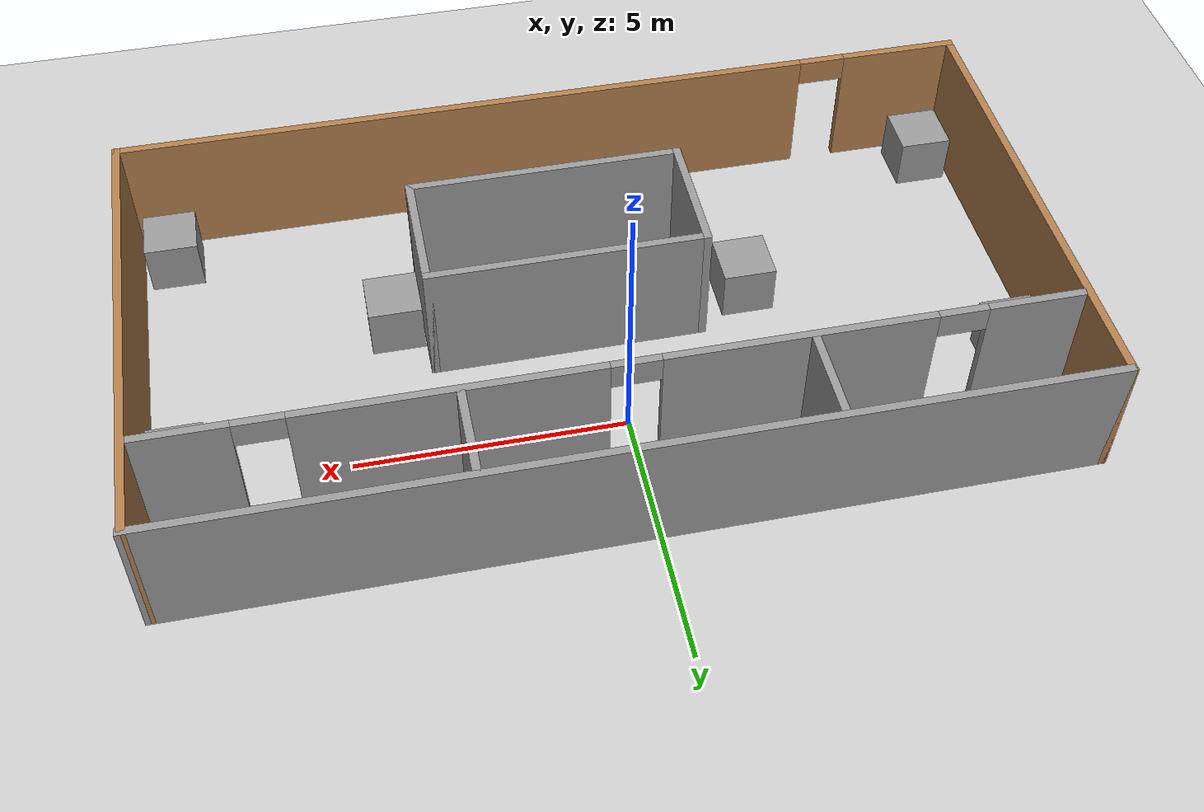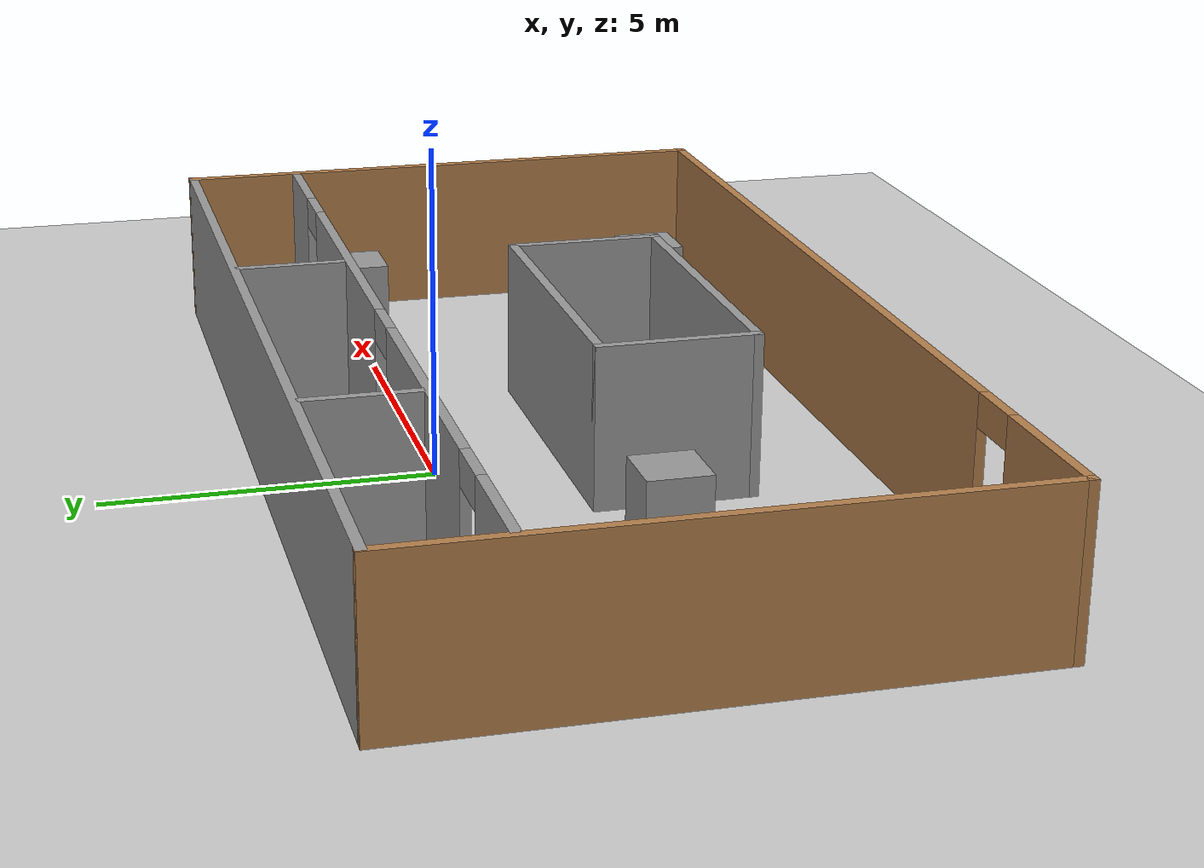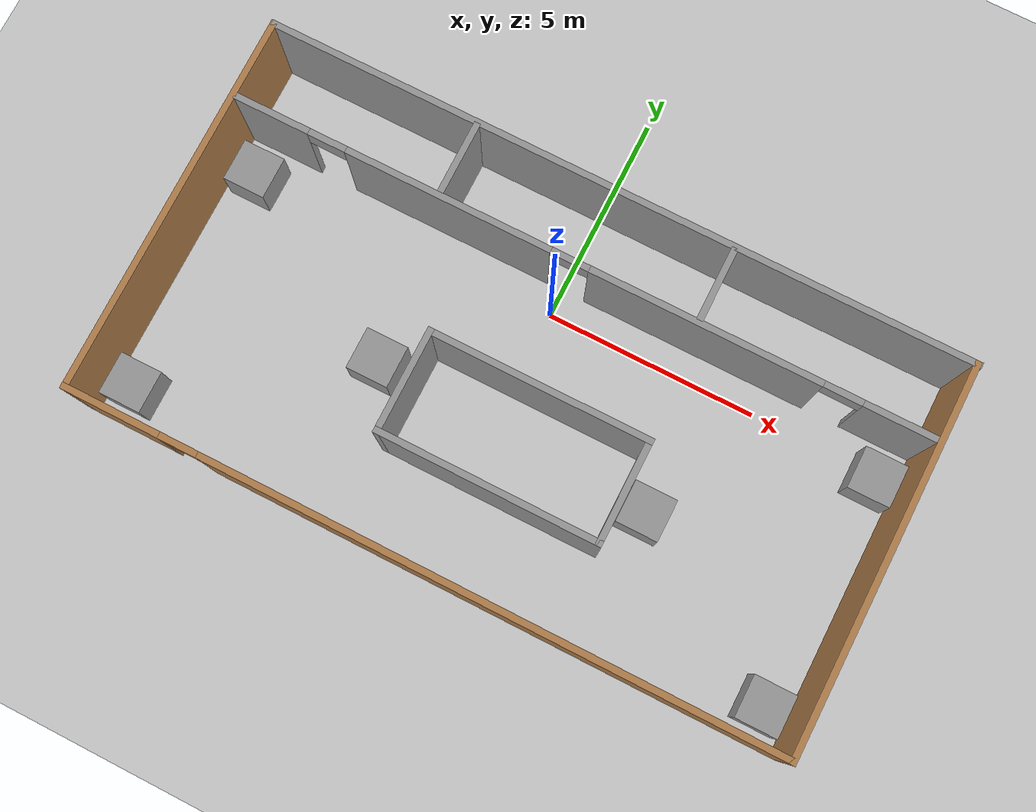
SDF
<sdf version="1.6">
 <world name="default">
  <light name="sun" type="directional">
   <pose>0 0 10 0 -0 0</pose>
   <diffuse>0.8 0.8 0.8 1</diffuse>
   <specular>0.1 0.1 0.1 1</specular>
   <attenuation>
    <range>1000</range>
    <constant>0.9</constant>
    <linear>0.01</linear>
    <quadratic>0.001</quadratic>
   </attenuation>
   <direction>-0.5 0.5 -1</direction>
  </light>
  <model name="ground_plane">
   <static>1</static>
   <link name="link">
    <collision name="collision">
     <geometry><plane><normal>0 0 1</normal><size>100 100</size></plane></geometry>
     <surface><friction><ode><mu>100</mu><mu2>50</mu2></ode></friction></surface>
    </collision>
    <visual name="visual">
     <cast_shadows>0</cast_shadows>
     <geometry><plane><normal>0 0 1</normal><size>100 100</size></plane></geometry>
     <material>
      <script><uri>file://media/materials/scripts/gazebo.material</uri><name>Gazebo/Grey</name></script>
     </material>
    </visual>
   </link>
  </model>
  <gravity>0 0 -9.8</gravity>
  <magnetic_field>6e-06 2.3e-05 -4.2e-05</magnetic_field>
  <atmosphere type="adiabatic"/>
  <physics name="default_physics" default="0" type="ode">
   <max_step_size>0.001</max_step_size>
   <real_time_factor>1</real_time_factor>
   <real_time_update_rate>1000</real_time_update_rate>
  </physics>
  <scene><ambient>0.4 0.4 0.4 1</ambient><background>0.7 0.7 0.7 1</background><shadows>1</shadows></scene>
  <spherical_coordinates>
   <surface_model>EARTH_WGS84</surface_model>
   <latitude_deg>0</latitude_deg>
   <longitude_deg>0</longitude_deg>
   <elevation>0</elevation>
   <heading_deg>0</heading_deg>
  </spherical_coordinates>
  <model name="my_test_world">
   <pose>0.283755 -1.96347 0 0 -0 0</pose>
   <link name="Wall_10">
    <pose>-0.036073 2.67165 0 0 -0 0</pose>
    <visual name="Wall_10_Visual_0">
     <pose>-7.34131 0 1.25 0 -0 0</pose>
     <geometry><box><size>1.81738 0.15 2.5</size></box></geometry>
     <material>
      <script><uri>file://media/materials/scripts/gazebo.material</uri><name>Gazebo/Grey</name></script>
      <ambient>1 1 1 1</ambient>
     </material>
    </visual>
    <collision name="Wall_10_Collision_0">
     <geometry><box><size>1.81738 0.15 2.5</size></box></geometry>
     <pose>-7.34131 0 1.25 0 -0 0</pose>
    </collision>
    <visual name="Wall_10_Visual_1">
     <pose>-3.08571 0 1.25 0 -0 0</pose>
     <geometry><box><size>4.89381 0.15 2.5</size></box></geometry>
     <material>
      <script><uri>file://media/materials/scripts/gazebo.material</uri><name>Gazebo/Grey</name></script>
      <ambient>1 1 1 1</ambient>
     </material>
    </visual>
    <collision name="Wall_10_Collision_1">
     <geometry><box><size>4.89381 0.15 2.5</size></box></geometry>
     <pose>-3.08571 0 1.25 0 -0 0</pose>
    </collision>
    <visual name="Wall_10_Visual_2">
     <pose>2.96847 0 1.25 0 -0 0</pose>
     <geometry><box><size>5.41456 0.15 2.5</size></box></geometry>
     <material>
      <script><uri>file://media/materials/scripts/gazebo.material</uri><name>Gazebo/Grey</name></script>
      <ambient>1 1 1 1</ambient>
     </material>
    </visual>
    <collision name="Wall_10_Collision_2">
     <geometry><box><size>5.41456 0.15 2.5</size></box></geometry>
     <pose>2.96847 0 1.25 0 -0 0</pose>
    </collision>
    <visual name="Wall_10_Visual_3">
     <pose>7.41287 0 1.25 0 -0 0</pose>
     <geometry><box><size>1.67425 0.15 2.5</size></box></geometry>
     <material>
      <script><uri>file://media/materials/scripts/gazebo.material</uri><name>Gazebo/Grey</name></script>
      <ambient>1 1 1 1</ambient>
     </material>
    </visual>
    <collision name="Wall_10_Collision_3">
     <geometry><box><size>1.67425 0.15 2.5</size></box></geometry>
     <pose>7.41287 0 1.25 0 -0 0</pose>
    </collision>
    <visual name="Wall_10_Visual_4">
     <pose>-5.98262 0 2.25 0 -0 0</pose>
     <geometry><box><size>0.9 0.15 0.5</size></box></geometry>
     <material>
      <script><uri>file://media/materials/scripts/gazebo.material</uri><name>Gazebo/Grey</name></script>
      <ambient>1 1 1 1</ambient>
     </material>
    </visual>
    <collision name="Wall_10_Collision_4">
     <geometry><box><size>0.9 0.15 0.5</size></box></geometry>
     <pose>-5.98262 0 2.25 0 -0 0</pose>
    </collision>
    <visual name="Wall_10_Visual_5">
     <pose>-0.188809 0 2.25 0 -0 0</pose>
     <geometry><box><size>0.9 0.15 0.5</size></box></geometry>
     <material>
      <script><uri>file://media/materials/scripts/gazebo.material</uri><name>Gazebo/Grey</name></script>
      <ambient>1 1 1 1</ambient>
     </material>
    </visual>
    <collision name="Wall_10_Collision_5">
     <geometry><box><size>0.9 0.15 0.5</size></box></geometry>
     <pose>-0.188809 0 2.25 0 -0 0</pose>
    </collision>
    <visual name="Wall_10_Visual_6">
     <pose>6.12575 0 2.25 0 -0 0</pose>
     <geometry><box><size>0.9 0.15 0.5</size></box></geometry>
     <material>
      <script><uri>file://media/materials/scripts/gazebo.material</uri><name>Gazebo/Grey</name></script>
      <ambient>1 1 1 1</ambient>
     </material>
    </visual>
    <collision name="Wall_10_Collision_6">
     <geometry><box><size>0.9 0.15 0.5</size></box></geometry>
     <pose>6.12575 0 2.25 0 -0 0</pose>
    </collision>
   </link>
   <link name="Wall_12">
    <collision name="Wall_12_Collision">
     <geometry><box><size>1.75 0.15 2.5</size></box></geometry>
     <pose>0 0 1.25 0 -0 0</pose>
    </collision>
    <visual name="Wall_12_Visual">
     <pose>0 0 1.25 0 -0 0</pose>
     <geometry><box><size>1.75 0.15 2.5</size></box></geometry>
     <material>
      <script><uri>file://media/materials/scripts/gazebo.material</uri><name>Gazebo/Grey</name></script>
      <ambient>1 1 1 1</ambient>
     </material>
    </visual>
    <pose>-3.34294 3.60141 0 0 0 -1.5708</pose>
   </link>
   <link name="Wall_14">
    <collision name="Wall_14_Collision">
     <geometry><box><size>1.75 0.15 2.5</size></box></geometry>
     <pose>0 0 1.25 0 -0 0</pose>
    </collision>
    <visual name="Wall_14_Visual">
     <pose>0 0 1.25 0 -0 0</pose>
     <geometry><box><size>1.75 0.15 2.5</size></box></geometry>
     <material>
      <script><uri>file://media/materials/scripts/gazebo.material</uri><name>Gazebo/Grey</name></script>
      <ambient>1 1 1 1</ambient>
     </material>
    </visual>
    <pose>2.75796 3.59493 0 0 0 -1.5708</pose>
   </link>
   <link name="Wall_21">
    <collision name="Wall_21_Collision">
     <geometry><box><size>16.7701 0.15 2.5</size></box></geometry>
     <pose>0 0 1.25 0 -0 0</pose>
    </collision>
    <visual name="Wall_21_Visual">
     <pose>0 0 1.25 0 -0 0</pose>
     <geometry><box><size>16.7701 0.15 2.5</size></box></geometry>
     <material>
      <script><uri>file://media/materials/scripts/gazebo.material</uri><name>Gazebo/Grey</name></script>
      <ambient>1 1 1 1</ambient>
     </material>
    </visual>
    <pose>0.013301 4.48901 0 0 -0 0</pose>
   </link>
   <link name="Wall_23">
    <collision name="Wall_23_Collision">
     <geometry><box><size>5.25 0.15 2.5</size></box></geometry>
     <pose>0 0 1.25 0 -0 0</pose>
    </collision>
    <visual name="Wall_23_Visual">
     <pose>0 0 1.25 0 -0 0</pose>
     <geometry><box><size>5.25 0.15 2.5</size></box></geometry>
     <material>
      <script><uri>file://media/materials/scripts/gazebo.material</uri><name>Gazebo/Grey</name></script>
      <ambient>1 1 1 1</ambient>
     </material>
    </visual>
    <pose>0.409903 -0.0249 0 0 -0 0</pose>
   </link>
   <link name="Wall_24">
    <collision name="Wall_24_Collision">
     <geometry><box><size>2.5 0.15 2.5</size></box></geometry>
     <pose>0 0 1.25 0 -0 0</pose>
    </collision>
    <visual name="Wall_24_Visual">
     <pose>0 0 1.25 0 -0 0</pose>
     <geometry><box><size>2.5 0.15 2.5</size></box></geometry>
     <material>
      <script><uri>file://media/materials/scripts/gazebo.material</uri><name>Gazebo/Grey</name></script>
      <ambient>1 1 1 1</ambient>
     </material>
    </visual>
    <pose>2.9599 -1.1999 0 0 0 -1.5708</pose>
   </link>
   <link name="Wall_25">
    <collision name="Wall_25_Collision">
     <geometry><box><size>5.25 0.15 2.5</size></box></geometry>
     <pose>0 0 1.25 0 -0 0</pose>
    </collision>
    <visual name="Wall_25_Visual">
     <pose>0 0 1.25 0 -0 0</pose>
     <geometry><box><size>5.25 0.15 2.5</size></box></geometry>
     <material>
      <script><uri>file://media/materials/scripts/gazebo.material</uri><name>Gazebo/Grey</name></script>
      <ambient>1 1 1 1</ambient>
     </material>
    </visual>
    <pose>0.409903 -2.3749 0 0 -0 3.14159</pose>
   </link>
   <link name="Wall_26">
    <collision name="Wall_26_Collision">
     <geometry><box><size>2.5 0.15 2.5</size></box></geometry>
     <pose>0 0 1.25 0 -0 0</pose>
    </collision>
    <visual name="Wall_26_Visual">
     <pose>0 0 1.25 0 -0 0</pose>
     <geometry><box><size>2.5 0.15 2.5</size></box></geometry>
     <material>
      <script><uri>file://media/materials/scripts/gazebo.material</uri><name>Gazebo/Grey</name></script>
      <ambient>1 1 1 1</ambient>
     </material>
    </visual>
    <pose>-2.1401 -1.1999 0 0 -0 1.5708</pose>
   </link>
   <link name="Wall_5">
    <collision name="Wall_5_Collision">
     <geometry><box><size>9.12804 0.15 2.5</size></box></geometry>
     <pose>0 0 1.25 0 -0 0</pose>
    </collision>
    <visual name="Wall_5_Visual">
     <pose>0 0 1.25 0 -0 0</pose>
     <geometry><box><size>9.12804 0.15 2.5</size></box></geometry>
     <material>
      <script><uri>file://media/materials/scripts/gazebo.material</uri><name>Gazebo/Wood</name></script>
      <ambient>1 1 1 1</ambient>
     </material>
    </visual>
    <pose>8.2867 0 0 0 0 -1.57304</pose>
   </link>
   <link name="Wall_6">
    <pose>-0.023356 -4.48901 0 0 -0 3.14159</pose>
    <visual name="Wall_6_Visual_0">
     <pose>-1.60591 0 1.25 0 -0 0</pose>
     <geometry><box><size>13.5382 0.15 2.5</size></box></geometry>
     <material>
      <script><uri>file://media/materials/scripts/gazebo.material</uri><name>Gazebo/Wood</name></script>
      <ambient>1 1 1 1</ambient>
     </material>
    </visual>
    <collision name="Wall_6_Collision_0">
     <geometry><box><size>13.5382 0.15 2.5</size></box></geometry>
     <pose>-1.60591 0 1.25 0 -0 0</pose>
    </collision>
    <visual name="Wall_6_Visual_1">
     <pose>7.21909 0 1.25 0 -0 0</pose>
     <geometry><box><size>2.31182 0.15 2.5</size></box></geometry>
     <material>
      <script><uri>file://media/materials/scripts/gazebo.material</uri><name>Gazebo/Wood</name></script>
      <ambient>1 1 1 1</ambient>
     </material>
    </visual>
    <collision name="Wall_6_Collision_1">
     <geometry><box><size>2.31182 0.15 2.5</size></box></geometry>
     <pose>7.21909 0 1.25 0 -0 0</pose>
    </collision>
    <visual name="Wall_6_Visual_2">
     <pose>5.61318 0 2.25 0 -0 0</pose>
     <geometry><box><size>0.9 0.15 0.5</size></box></geometry>
     <material>
      <script><uri>file://media/materials/scripts/gazebo.material</uri><name>Gazebo/Wood</name></script>
      <ambient>1 1 1 1</ambient>
     </material>
    </visual>
    <collision name="Wall_6_Collision_2">
     <geometry><box><size>0.9 0.15 0.5</size></box></geometry>
     <pose>5.61318 0 2.25 0 -0 0</pose>
    </collision>
   </link>
   <link name="Wall_7">
    <collision name="Wall_7_Collision">
     <geometry><box><size>9.12802 0.15 2.5</size></box></geometry>
     <pose>0 0 1.25 0 -0 0</pose>
    </collision>
    <visual name="Wall_7_Visual">
     <pose>0 0 1.25 0 -0 0</pose>
     <geometry><box><size>9.12802 0.15 2.5</size></box></geometry>
     <material>
      <script><uri>file://media/materials/scripts/gazebo.material</uri><name>Gazebo/Wood</name></script>
      <ambient>1 1 1 1</ambient>
     </material>
    </visual>
    <pose>-8.32336 0 0 0 -0 1.5708</pose>
   </link>
   <static>1</static>
  </model>
  <model name="unit_box_0">
   <pose>-7.31145 -0.213201 0.499995 -1e-05 0 0</pose>
   <link name="link">
    <inertial>
     <mass>1</mass>
     <inertia>
      <ixx>0.166667</ixx>
      <ixy>0</ixy>
      <ixz>0</ixz>
      <iyy>0.166667</iyy>
      <iyz>0</iyz>
      <izz>0.166667</izz>
     </inertia>
    </inertial>
    <collision name="collision"><geometry><box><size>1 1 1</size></box></geometry></collision>
    <visual name="visual">
     <geometry><box><size>1 1 1</size></box></geometry>
     <material>
      <script><name>Gazebo/Grey</name><uri>file://media/materials/scripts/gazebo.material</uri></script>
     </material>
    </visual>
   </link>
  </model>
  <model name="unit_box_1">
   <pose>7.93842 -0.215106 0.499995 0 1e-05 0</pose>
   <link name="link">
    <inertial>
     <mass>1</mass>
     <inertia>
      <ixx>0.166667</ixx>
      <ixy>0</ixy>
      <ixz>0</ixz>
      <iyy>0.166667</iyy>
      <iyz>0</iyz>
      <izz>0.166667</izz>
     </inertia>
    </inertial>
    <collision name="collision"><geometry><box><size>1 1 1</size></box></geometry></collision>
    <visual name="visual">
     <geometry><box><size>1 1 1</size></box></geometry>
     <material>
      <script><name>Gazebo/Grey</name><uri>file://media/materials/scripts/gazebo.material</uri></script>
     </material>
    </visual>
   </link>
  </model>
  <model name="unit_box_2">
   <pose>7.85152 -5.65444 0.499995 -1e-05 0 0</pose>
   <link name="link">
    <inertial>
     <mass>1</mass>
     <inertia>
      <ixx>0.166667</ixx>
      <ixy>0</ixy>
      <ixz>0</ixz>
      <iyy>0.166667</iyy>
      <iyz>0</iyz>
      <izz>0.166667</izz>
     </inertia>
    </inertial>
    <collision name="collision"><geometry><box><size>1 1 1</size></box></geometry></collision>
    <visual name="visual">
     <geometry><box><size>1 1 1</size></box></geometry>
     <material>
      <script><name>Gazebo/Grey</name><uri>file://media/materials/scripts/gazebo.material</uri></script>
     </material>
    </visual>
   </link>
  </model>
  <model name="unit_box_3">
   <pose>-7.35574 -5.67819 0.499995 0 1e-05 0</pose>
   <link name="link">
    <inertial>
     <mass>1</mass>
     <inertia>
      <ixx>0.166667</ixx>
      <ixy>0</ixy>
      <ixz>0</ixz>
      <iyy>0.166667</iyy>
      <iyz>0</iyz>
      <izz>0.166667</izz>
     </inertia>
    </inertial>
    <collision name="collision"><geometry><box><size>1 1 1</size></box></geometry></collision>
    <visual name="visual">
     <geometry><box><size>1 1 1</size></box></geometry>
     <material>
      <script><name>Gazebo/Grey</name><uri>file://media/materials/scripts/gazebo.material</uri></script>
     </material>
    </visual>
   </link>
  </model>
  <model name="unit_box_4">
   <pose>-2.84994 -2.76444 0.499995 -1e-05 0 0</pose>
   <link name="link">
    <inertial>
     <mass>1</mass>
     <inertia>
      <ixx>0.166667</ixx>
      <ixy>0</ixy>
      <ixz>0</ixz>
      <iyy>0.166667</iyy>
      <iyz>0</iyz>
      <izz>0.166667</izz>
     </inertia>
    </inertial>
    <collision name="collision"><geometry><box><size>1 1 1</size></box></geometry></collision>
    <visual name="visual">
     <geometry><box><size>1 1 1</size></box></geometry>
     <material>
      <script><name>Gazebo/Grey</name><uri>file://media/materials/scripts/gazebo.material</uri></script>
     </material>
    </visual>
   </link>
  </model>
  <model name="unit_box_5">
   <pose>3.84259 -3.1138 0.5 0 -0 0</pose>
   <link name="link">
    <inertial>
     <mass>1</mass>
     <inertia>
      <ixx>0.166667</ixx>
      <ixy>0</ixy>
      <ixz>0</ixz>
      <iyy>0.166667</iyy>
      <iyz>0</iyz>
      <izz>0.166667</izz>
     </inertia>
    </inertial>
    <collision name="collision"><geometry><box><size>1 1 1</size></box></geometry></collision>
    <visual name="visual">
     <geometry><box><size>1 1 1</size></box></geometry>
     <material>
      <script><name>Gazebo/Grey</name><uri>file://media/materials/scripts/gazebo.material</uri></script>
     </material>
    </visual>
   </link>
  </model>
 </world>
</sdf>
